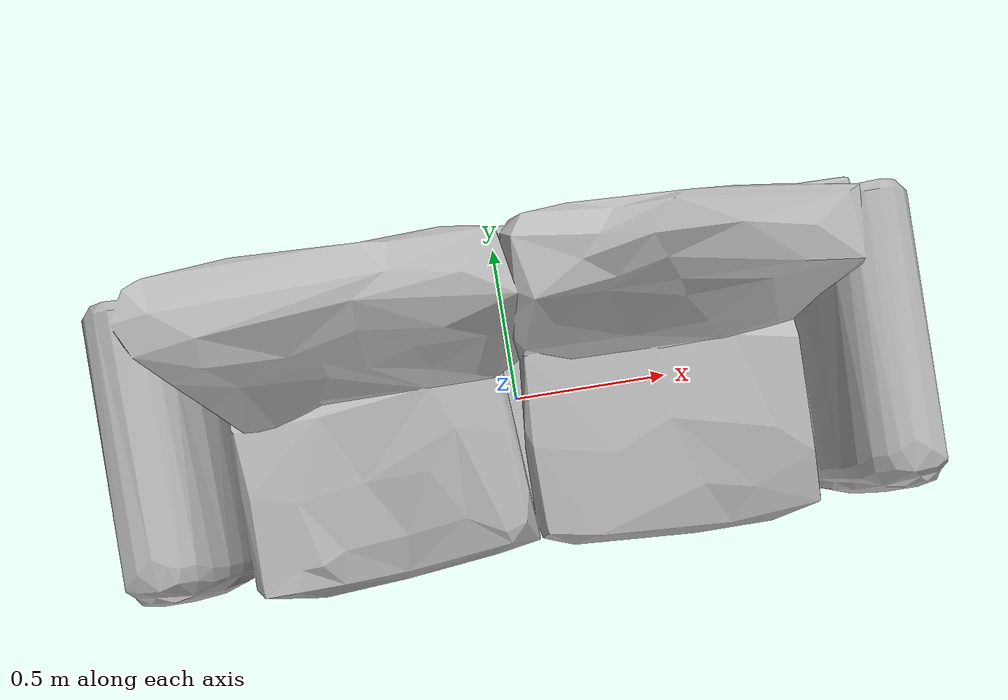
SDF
<?xml version="1.0"?>
<sdf version="1.9">
  <model name="couch">
    <static>true</static>
    <link name="link">
      <visual name="visual">
        <!-- Source OBJ is Y-up; rotate it into Gazebo's Z-up frame. -->
        <pose>0 0 0 1.57079632679 0 0</pose>
        <geometry>
          <mesh>
            <uri>model://cmra_models/couch/Couch.obj</uri>
            <scale>0.01 0.01 0.01</scale>
          </mesh>
        </geometry>
      </visual>
    </link>
  </model>
</sdf>
